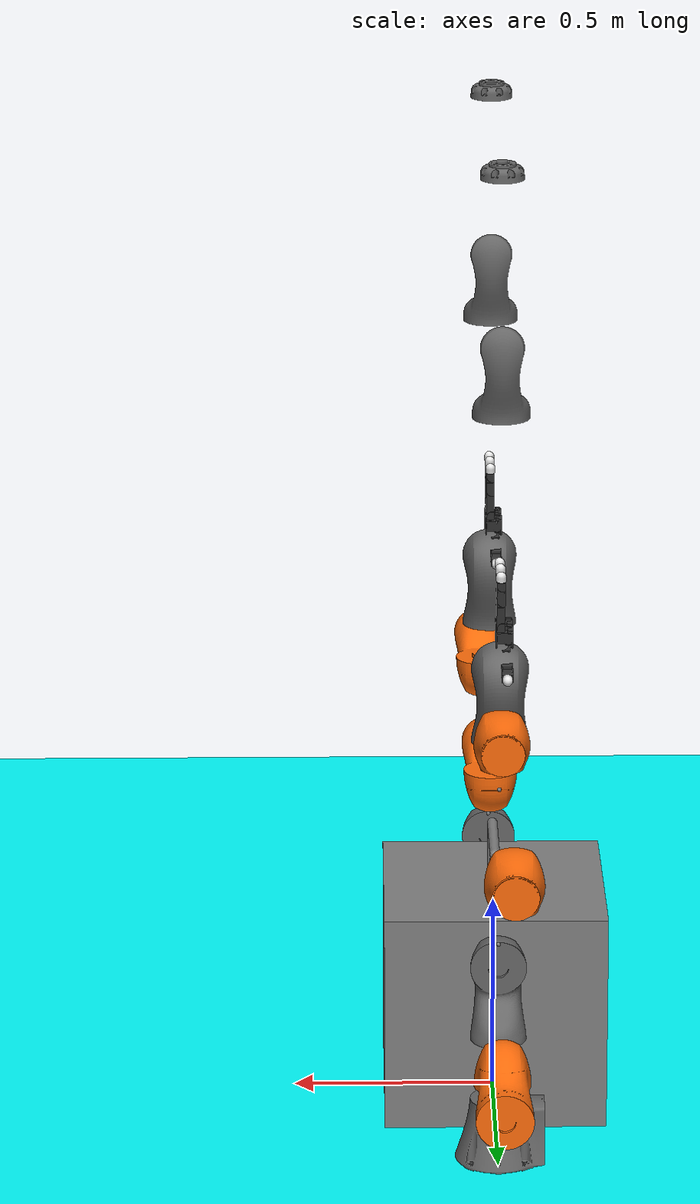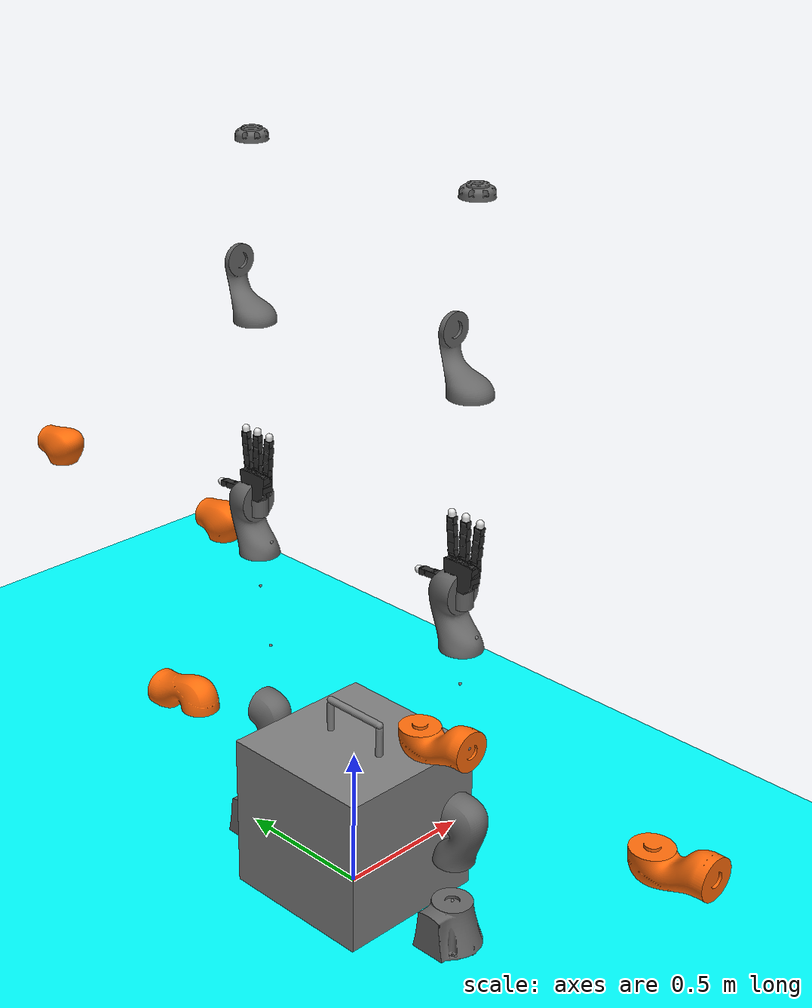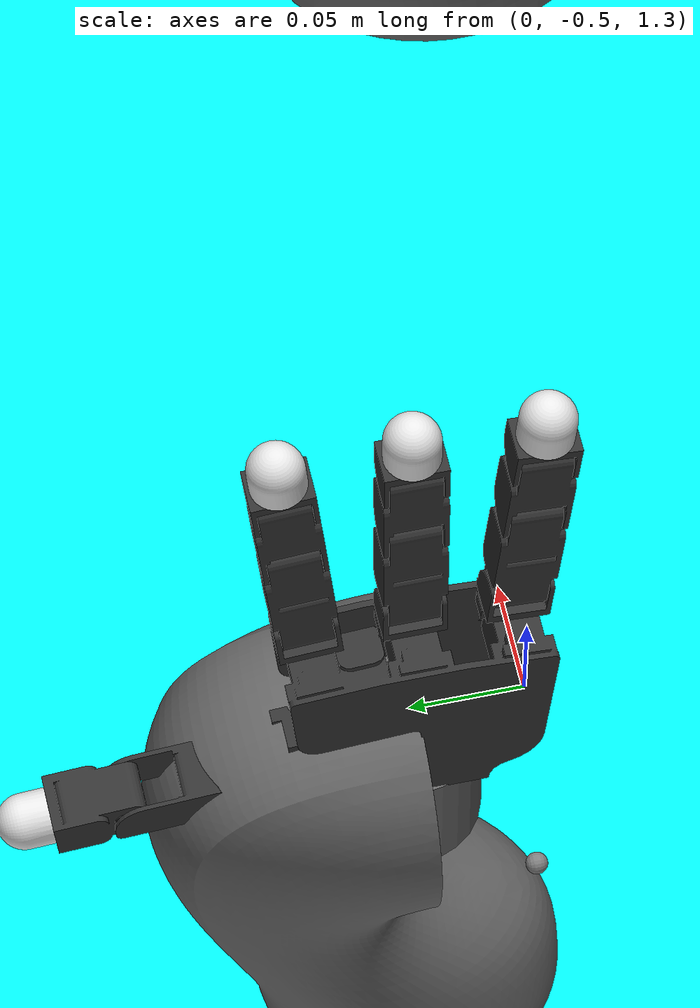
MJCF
<mujoco model="bimanual_allegro">
<!-- Copyright (c) 2023 Boston Dynamics AI Institute LLC. All rights reserved. -->

  <compiler angle="radian" meshdir="../../../meshes/" autolimits="true"/>
  <option timestep="0.01"/>

  <default>
    <default class="corner_contact">
      <geom type="sphere" size="1e-7" friction="0.5" priority="3"/>
    </default>
    <default class="allegro_right">
      <joint axis="0 1 0" damping=".1"/>
      <position kp="0.5" forcerange="-0.1 0.1"/>
      <geom density="800"/>

      <default class="allegro_right_visual">
        <geom type="mesh" contype="0" conaffinity="0" group="2" material="black"/>
        <default class="palm_visual">
          <geom mesh="base_link"/>
        </default>
        <default class="base_visual">
          <geom mesh="link_0.0"/>
        </default>
        <default class="proximal_visual">
          <geom mesh="link_1.0"/>
        </default>
        <default class="medial_visual">
          <geom mesh="link_2.0"/>
        </default>
        <default class="distal_visual">
          <geom mesh="link_3.0"/>
        </default>
        <default class="fingertip_visual">
          <geom pos="0 0 0.0267" material="white" mesh="link_3.0_tip"/>
        </default>
        <default class="thumbtip_visual">
          <geom pos="0 0 0.0423" material="white" mesh="link_15.0_tip"/>
        </default>
      </default>

      <default class="collision">
        <geom group="3" friction="0.50" type="box" mass="0"
        solimp="0.9 0.95 0.001 0.5 2" solref="0.02 1"/>
        <default class="palm_collision">
          <geom size="0.0204 0.0565 0.0475" pos="-0.0093 0 -0.0475"/>
        </default>
        <default class="base_collision">
          <geom size="0.0098 0.01375 0.0082" pos="0 0 0.0082"/>
          <default class="thumb_base_collision_0">
            <geom size="0.0179 0.017 0.011" pos="-0.0179 0.009 0.003"/>
          </default>
          <default class="thumb_base_collision_1">
            <geom size="0.0179 0.00980 0.012" pos="-0.0179 0.005 0.0255"/>
          </default>
          <default class="thumb_base_collision_2">
            <geom type="cylinder" size="0.007 0.0179" quat="1 0 1 0" pos="-0.0179 0.019 0.014"/>
          </default>
        </default>
        <default class="proximal_collision">
          <geom size="0.0098 0.01375 0.027" pos="0 0 0.027"/>
          <default class="thumb_proximal_collision">
            <geom size="0.0098 0.01375 0.00885" pos="0 0 0.00885"/>
          </default>
        </default>
        <default class="medial_collision">
          <geom size="0.0098 0.01375 0.0192" pos="0 0 0.0192"/>
          <default class="thumb_medial_collision">
            <geom size="0.0098 0.01375 0.0257" pos="0 0 0.0257"/>
          </default>
        </default>
        <default class="distal_collision">
          <geom size="0.0098 0.01375 0.008" pos="0 0 0.008"/>
          <default class="thumb_distal_collision">
            <geom size="0.0098 0.01375 0.0157" pos="0 0 0.0157"/>
          </default>
        </default>
        <default class="fingertip_collision">
          <geom type="capsule" size="0.012 0.01" pos="0 0 0.019"/>
          <default class="thumbtip_collision">
            <geom type="capsule" size="0.012 0.008" pos="0 0 0.035"/>
          </default>
        </default>
      </default>

      <default class="palm">
        <joint damping="1.0" range="-0.25 0.25"/>
        <position kp="0.5" ctrlrange="-0.25 0.25" forcerange="-1 1"/>
      </default>
      <default class="base">
        <joint axis="0 0 1" range="-0.47 0.47"/>
        <position ctrlrange="-0.47 0.47"/>
      </default>
      <default class="proximal">
        <joint range="-0.196 1.61"/>
        <position ctrlrange="-0.196 1.61"/>
      </default>
      <default class="medial">
        <joint range="-0.174 1.709"/>
        <position ctrlrange="-0.174 1.709"/>
      </default>
      <default class="distal">
        <joint range="-0.227 1.618"/>
        <position ctrlrange="-0.227 1.618"/>
      </default>
      <default class="thumb_base">
        <joint axis="-1 0 0" range="0.263 1.396"/>
        <position ctrlrange="0.263 1.396"/>
      </default>
      <default class="thumb_proximal">
        <joint axis="0 0 1" range="-0.105 1.163"/>
        <position ctrlrange="-0.105 1.163"/>
      </default>
      <default class="thumb_medial">
        <joint range="-0.189 1.644"/>
        <position ctrlrange="-0.189 1.644"/>
      </default>
      <default class="thumb_distal">
        <joint range="-0.162 1.719"/>
        <position ctrlrange="-0.162 1.719"/>
      </default>
    </default>

    <default class="iiwa">
      <!-- the margin gap parameters allow for collision detection to be triggered all the time -->
      <geom priority="2" friction="0.45 .01 .003" group="3" solref=".02 1" margin="0.0" gap="0.0"/>
      <material specular="0.5" shininess="0.25"/>
      <joint axis="0 0 1"  damping="3.0"/>
      <position kp="2.5" ctrlrange="-2.81706 2.81706" forcerange="-1000 1000" />
      <default class="joint1">
        <joint range="-2.96706 2.96706"/>
        <position ctrlrange="-2.81706 2.81706"/>
      </default>
      <default class="joint2">
        <joint range="-2.0944 2.0944"/>
        <position ctrlrange="-1.9444 1.9444"/>
      </default>
      <default class="joint3">
        <joint range="-2.0944 2.0944"/>
        <position ctrlrange="-1.9444 1.9444"/>
      </default>
      <default class="joint4">
        <joint range="-2.0944 2.0944"/>
        <position ctrlrange="-1.9444 1.9444"/>
      </default>
      <default class="joint5">
        <joint range="-3.05433 3.05433"/>
        <position ctrlrange="-2.90433 2.90433"/>
      </default>
      <default class="iiwa_visual">
        <geom type="mesh" group="2" material="gray"/>
      </default>
    </default>
  </default>

  <asset>
    <texture name="blue_grid" type="2d" builtin="checker" rgb1=".02 .14 .44" rgb2=".27 .55 1" width="300" height="300" mark="edge" markrgb="1 1 1"/>
    <material name="blue_grid" texture="blue_grid" texrepeat="1 1" texuniform="true" reflectance=".2"/>
    <material class="iiwa" name="gray" rgba="0.4 0.4 0.4 1"/>
    <material class="iiwa" name="orange" rgba="1 0.423529 0.0392157 1"/>
    <material name="black" rgba="0.2 0.2 0.2 1"/>
    <material name="white" rgba="0.9 0.9 0.9 1"/>

    <mesh name="link_0" file="iiwa7/visual/link_0.obj"/>
    <mesh name="link_1" file="iiwa7/visual/link_1.obj"/>
    <mesh name="link_2" file="iiwa7/visual/link_2.obj"/>
    <mesh name="link_3" file="iiwa7/visual/link_3.obj"/>
    <mesh name="link_4" file="iiwa7/visual/link_4.obj"/>
    <mesh name="link_5" file="iiwa7/visual/link_5.obj"/>
    <mesh name="link_6" file="iiwa7/visual/link_6.obj"/>
    <mesh name="link_7" file="iiwa7/visual/link_7.obj"/>

    <mesh name="base_link_left" file="allegro/visual/base_link_left.obj"/>
    <mesh name="base_link" file="allegro/visual/base_link.obj"/>
    <mesh name="link_0.0" file="allegro/visual/link_0.0.obj"/>
    <mesh name="link_1.0" file="allegro/visual/link_1.0.obj"/>
    <mesh name="link_2.0" file="allegro/visual/link_2.0.obj"/>
    <mesh name="link_3.0_tip" file="allegro/visual/link_3.0_tip.obj"/>
    <mesh name="link_3.0" file="allegro/visual/link_3.0.obj"/>
    <mesh name="link_4.0" file="allegro/visual/link_4.0.obj"/>
    <mesh name="link_12.0_left" file="allegro/visual/link_12.0_left.obj"/>
    <mesh name="link_12.0_right" file="allegro/visual/link_12.0_right.obj"/>
    <mesh name="link_13.0" file="allegro/visual/link_13.0.obj"/>
    <mesh name="link_14.0" file="allegro/visual/link_14.0.obj"/>
    <mesh name="link_15.0_tip" file="allegro/visual/link_15.0_tip.obj"/>
    <mesh name="link_15.0" file="allegro/visual/link_15.0.obj"/>

  </asset>

  <worldbody>
    <site name="world"/>
    <body>
      <geom mass="0" name="floor" pos="0 0 -0.10" condim="3" size="10.0 10.0 0.10" rgba="0 1 1 1" type="box" material="blue_grid"/>
    </body>

    <include file="../../components/objects/box_with_handle.xml" />

    <light name="top" pos="0 0 2" mode="trackcom"/>
    <body name="base_left" pos="0 -0.45 0" childclass="iiwa">
      <inertial mass="3.863" pos="-0.013 0 0.07" diaginertia="0.0141 0.0171 0.0178"/>
      <geom class="iiwa_visual" mesh="link_0"/>
      <body name="link1_left" gravcomp="1" pos="0 0 0.1575">
        <inertial mass="2.7025" pos="0 -0.0347 0.113" diaginertia="0.0171 0.0163 0.006"/>
        <joint name="joint1_left" class="joint1"/>
        <geom class="iiwa_visual" mesh="link_1"/>
        <site pos="0 0 -0.0005" name="site_link1_left"/>
        <body name="link2_left" gravcomp="1" pos="0 0 0.1830" quat="0 0 1 1">
          <inertial mass="2.7258" pos="0 0.0668 0.0344" diaginertia="0.0170 0.0162 0.0061" quat="0 0 1 1"/>
          <joint name="joint2_left" class="joint2"/>
          <geom class="iiwa_visual" material="orange" mesh="link_2"/>
          <site pos="0 0 -0.01" name="site_link2_left"/>
          <body name="link3_left" gravcomp="1" pos="0 0.1845 0" quat="0 0 1 1">
            <inertial mass="3.175" pos="0 0.0296 0.1265" diaginertia="0.025 0.0238 0.0076"/>
            <joint name="joint3_left" class="joint1"/>
            <geom class="iiwa_visual" mesh="link_3"/>
            <site pos="0 0 0.0355" name="site_link3_left"/>
            <body name="link4_left" gravcomp="1" pos="0 0 0.2155" quat="1 1 0 0">
              <inertial mass="2.73" pos="0 0.067 0.034" diaginertia="0.017 0.0162 0.0061" quat="1 1 0 0"/>
              <joint name="joint4_left" class="joint3"/>
              <geom class="iiwa_visual" material="orange" mesh="link_4"/>
              <site pos="0 0.01 0.046" name="site_link4_left"/>
              <body name="link5_left" gravcomp="1" pos="0 0.1845 0" quat="0 0 1 1">
                <inertial mass="1.69" pos="0.0001 0.021 0.076" diaginertia="0.01 0.0087 0.00449"/>
                <joint name="joint5_left" class="joint1"/>
                <geom class="iiwa_visual" mesh="link_5"/>
                <site pos="0 0 0.0335" name="site_link5_left"/>
                <body name="link6_left" gravcomp="1" pos="0 0 0.2155" quat="1 1 0 0">
                  <inertial mass="1.8" pos="0 0.0026 0.0005" diaginertia="0.0051 0.0047 0.0035" quat="1 1 0 0"/>
                  <joint name="joint6_left" class="joint4"/>
                  <geom class="iiwa_visual" pos="0 0 -0.0607" material="orange" mesh="link_6"/>
                  <site pos="0 0 -0.059" name="site_link6_left"/>
                  <body name="link7_left" gravcomp="1" pos="0 0.081 0" quat="0 0 1 1">
                    <inertial mass="0.4" pos="0 0 0.0294" diaginertia="0.0004 0.0004 0.0005"/>
                    <joint name="joint7_left" class="joint5"/>
                    <geom class="iiwa_visual" mesh="link_7"/>
                    <geom class="iiwa_visual" type="cylinder" material="gray" size="0.0315 0.0305" pos="0 0 0.0305"/>
                    <site pos="0 0 0.001" name="site_link7_left"/>
                    <body name="palm_left" pos="0 0 0.155" childclass="allegro_right">
                      <inertial mass="0.4154" pos="0 0 0.0475" diaginertia="1e-4 1e-4 1e-4"/>
                      <geom class="palm_visual" mesh="base_link"/>
                      <geom class="palm_collision"/>
                      <!-- First finger -->
                      <body name="ff_base_left" pos="0 0.0435 -0.001542" quat="0.999048 -0.0436194 0 0">
                        <joint name="ffj0_left" class="base"/>
                        <geom class="base_visual"/>
                        <geom class="base_collision"/>
                        <body name="ff_proximal_left" pos="0 0 0.0164">
                          <joint name="ffj1_left" class="proximal"/>
                          <geom class="proximal_visual"/>
                          <geom class="proximal_collision"/>
                          <body name="ff_medial_left" pos="0 0 0.054">
                            <joint name="ffj2_left" class="medial"/>
                            <geom class="medial_visual"/>
                            <geom class="medial_collision"/>
                            <body name="ff_distal_left" pos="0 0 0.0384">
                              <joint name="ffj3_left" class="distal"/>
                              <geom class="distal_visual"/>
                              <geom class="distal_collision"/>
                              <body name="ff_tip_left">
                                <geom class="fingertip_visual"/>
                                <geom class="fingertip_collision"/>
                                <site pos="0 0 0" name="site_ff_tip_left"/>
                              </body>
                            </body>
                          </body>
                        </body>
                      </body>
                      <!-- Middle finger -->
                      <body name="mf_base_left" pos="0 0 0.0007">
                        <joint name="mfj0_left" class="base"/>
                        <geom class="base_visual"/>
                        <geom class="base_collision"/>
                        <body name="mf_proximal_left" pos="0 0 0.0164">
                          <joint name="mfj1_left" class="proximal"/>
                          <geom class="proximal_visual"/>
                          <geom class="proximal_collision"/>
                          <body name="mf_medial_left" pos="0 0 0.054">
                            <joint name="mfj2_left" class="medial"/>
                            <geom class="medial_visual"/>
                            <geom class="medial_collision"/>
                            <body name="mf_distal_left" pos="0 0 0.0384">
                              <joint name="mfj3_left" class="distal"/>
                              <geom class="distal_visual"/>
                              <geom class="distal_collision"/>
                              <body name="mf_tip_left">
                                <geom class="fingertip_visual"/>
                                <geom class="fingertip_collision"/>
                                <site pos="0 0 0" name="site_mf_tip_left"/>
                              </body>
                            </body>
                          </body>
                        </body>
                      </body>
                      <!-- Ring finger -->
                      <body name="rf_base_left" pos="0 -0.0435 -0.001542" quat="0.999048 0.0436194 0 0">
                        <joint name="rfj0_left" class="base"/>
                        <geom class="base_visual"/>
                        <geom class="base_collision"/>
                        <body name="rf_proximal_left" pos="0 0 0.0164">
                          <joint name="rfj1_left" class="proximal"/>
                          <geom class="proximal_visual"/>
                          <geom class="proximal_collision"/>
                          <body name="rf_medial_left" pos="0 0 0.054">
                            <joint name="rfj2_left" class="medial"/>
                            <geom class="medial_visual"/>
                            <geom class="medial_collision"/>
                            <body name="rf_distal_left" pos="0 0 0.0384">
                              <joint name="rfj3_left" class="distal"/>
                              <geom class="distal_visual"/>
                              <geom class="distal_collision"/>
                              <body name="rf_tip_left">
                                <geom class="fingertip_visual"/>
                                <geom class="fingertip_collision"/>
                                <site pos="0 0 0" name="site_rf_tip_left"/>
                              </body>
                            </body>
                          </body>
                        </body>
                      </body>
                      <!-- Thumb -->
                      <body name="th_base_left" pos="-0.0182 0.019333 -0.045987" quat="0.477714 -0.521334 -0.521334 -0.477714">
                        <joint name="thj0_left" class="thumb_base"/>
                        <geom class="allegro_right_visual" mesh="link_12.0_right"/>
                        <geom class="thumb_base_collision_0"/>
                        <geom class="thumb_base_collision_1"/>
                        <geom class="thumb_base_collision_2"/>
                        <body name="th_proximal_left" pos="-0.027 0.005 0.0399">
                          <joint name="thj1_left" class="thumb_proximal"/>
                          <geom class="allegro_right_visual" mesh="link_13.0"/>
                          <geom class="thumb_proximal_collision"/>
                          <body name="th_medial_left" pos="0 0 0.0177">
                            <joint name="thj2_left" class="thumb_medial"/>
                            <geom class="allegro_right_visual" mesh="link_14.0"/>
                            <geom class="thumb_medial_collision"/>
                            <body name="th_distal_left" pos="0 0 0.0514">
                              <joint name="thj3_left" class="thumb_distal"/>
                              <geom class="allegro_right_visual" mesh="link_15.0"/>
                              <geom class="thumb_distal_collision"/>
                              <body name="th_tip_left">
                                <geom class="thumbtip_visual"/>
                                <geom class="thumbtip_collision"/>
                                <site pos="0 0 0" name="site_th_tip_left"/>
                              </body>
                            </body>
                          </body>
                        </body>
                      </body>
                    </body>
                  </body>
                </body>
              </body>
            </body>
          </body>
        </body>
      </body>
    </body>

    <body name="base_right" pos="0 0.45 0" childclass="iiwa">
      <inertial mass="3.863" pos="-0.013 0 0.07" diaginertia="0.0141 0.0171 0.0178"/>
      <geom class="iiwa_visual" mesh="link_0"/>
      <body name="link1_right" gravcomp="1" pos="0 0 0.1575">
        <inertial mass="2.7025" pos="0 -0.0347 0.113" diaginertia="0.0171 0.0163 0.006"/>
        <joint name="joint1_right" class="joint1"/>
        <geom class="iiwa_visual" mesh="link_1"/>
        <site pos="0 0 -0.0005" name="site_link1_right"/>
        <body name="link2_right" gravcomp="1" pos="0 0 0.1830" quat="0 0 1 1">
          <inertial mass="2.7258" pos="0 0.0668 0.0344" diaginertia="0.0170 0.0162 0.0061" quat="0 0 1 1"/>
          <joint name="joint2_right" class="joint2"/>
          <geom class="iiwa_visual" material="orange" mesh="link_2"/>
          <site pos="0 0 -0.01" name="site_link2_right"/>
          <body name="link3_right" gravcomp="1" pos="0 0.1845 0" quat="0 0 1 1">
            <inertial mass="3.175" pos="0 0.0296 0.1265" diaginertia="0.025 0.0238 0.0076"/>
            <joint name="joint3_right" class="joint1"/>
            <geom class="iiwa_visual" mesh="link_3"/>
            <site pos="0 0 0.0355" name="site_link3_right"/>
            <body name="link4_right" gravcomp="1" pos="0 0 0.2155" quat="1 1 0 0">
              <inertial mass="2.73" pos="0 0.067 0.034" diaginertia="0.017 0.0162 0.0061" quat="1 1 0 0"/>
              <joint name="joint4_right" class="joint3"/>
              <geom class="iiwa_visual" material="orange" mesh="link_4"/>
              <site pos="0 0.01 0.046" name="site_link4_right"/>
              <body name="link5_right" gravcomp="1" pos="0 0.1845 0" quat="0 0 1 1">
                <inertial mass="1.69" pos="0.0001 0.021 0.076" diaginertia="0.01 0.0087 0.00449"/>
                <joint name="joint5_right" class="joint1"/>
                <geom class="iiwa_visual" mesh="link_5"/>
                <site pos="0 0 0.0335" name="site_link5_right"/>
                <body name="link6_right" gravcomp="1" pos="0 0 0.2155" quat="1 1 0 0">
                  <inertial mass="1.8" pos="0 0.0026 0.0005" diaginertia="0.0051 0.0047 0.0035" quat="1 1 0 0"/>
                  <joint name="joint6_right" class="joint4"/>
                  <geom class="iiwa_visual" pos="0 0 -0.0607" material="orange" mesh="link_6"/>
                  <site pos="0 0 -0.059" name="site_link6_right"/>
                  <body name="link7_right" gravcomp="1" pos="0 0.081 0" quat="0 0 1 1">
                    <inertial mass="0.4" pos="0 0 0.0294" diaginertia="0.0004 0.0004 0.0005"/>
                    <joint name="joint7_right" class="joint5"/>
                    <geom class="iiwa_visual" mesh="link_7"/>
                    <geom class="iiwa_visual" type="cylinder" material="gray" size="0.0315 0.0305" pos="0 0 0.0305"/>
                    <site pos="0 0 0.001" name="site_link7_right"/>
                    <body name="palm_right" pos="0 0 0.155" childclass="allegro_right">
                      <inertial mass="0.4154" pos="0 0 0.0475" diaginertia="1e-4 1e-4 1e-4"/>
                      <geom class="palm_visual" mesh="base_link"/>
                      <geom class="palm_collision"/>
                      <!-- First finger -->
                      <body name="ff_base_right" pos="0 0.0435 -0.001542" quat="0.999048 -0.0436194 0 0">
                        <joint name="ffj0_right" class="base"/>
                        <geom class="base_visual"/>
                        <geom class="base_collision"/>
                        <body name="ff_proximal_right" pos="0 0 0.0164">
                          <joint name="ffj1_right" class="proximal"/>
                          <geom class="proximal_visual"/>
                          <geom class="proximal_collision"/>
                          <body name="ff_medial_right" pos="0 0 0.054">
                            <joint name="ffj2_right" class="medial"/>
                            <geom class="medial_visual"/>
                            <geom class="medial_collision"/>
                            <body name="ff_distal_right" pos="0 0 0.0384">
                              <joint name="ffj3_right" class="distal"/>
                              <geom class="distal_visual"/>
                              <geom class="distal_collision"/>
                              <body name="ff_tip_right">
                                <geom class="fingertip_visual"/>
                                <geom class="fingertip_collision"/>
                                <site pos="0 0 0" name="site_ff_tip_right"/>
                              </body>
                            </body>
                          </body>
                        </body>
                      </body>
                      <!-- Middle finger -->
                      <body name="mf_base_right" pos="0 0 0.0007">
                        <joint name="mfj0_right" class="base"/>
                        <geom class="base_visual"/>
                        <geom class="base_collision"/>
                        <body name="mf_proximal_right" pos="0 0 0.0164">
                          <joint name="mfj1_right" class="proximal"/>
                          <geom class="proximal_visual"/>
                          <geom class="proximal_collision"/>
                          <body name="mf_medial_right" pos="0 0 0.054">
                            <joint name="mfj2_right" class="medial"/>
                            <geom class="medial_visual"/>
                            <geom class="medial_collision"/>
                            <body name="mf_distal_right" pos="0 0 0.0384">
                              <joint name="mfj3_right" class="distal"/>
                              <geom class="distal_visual"/>
                              <geom class="distal_collision"/>
                              <body name="mf_tip_right">
                                <geom class="fingertip_visual"/>
                                <geom class="fingertip_collision"/>
                                <site pos="0 0 0" name="site_mf_tip_right"/>
                              </body>
                            </body>
                          </body>
                        </body>
                      </body>
                      <!-- Ring finger -->
                      <body name="rf_base_right" pos="0 -0.0435 -0.001542" quat="0.999048 0.0436194 0 0">
                        <joint name="rfj0_right" class="base"/>
                        <geom class="base_visual"/>
                        <geom class="base_collision"/>
                        <body name="rf_proximal_right" pos="0 0 0.0164">
                          <joint name="rfj1_right" class="proximal"/>
                          <geom class="proximal_visual"/>
                          <geom class="proximal_collision"/>
                          <body name="rf_medial_right" pos="0 0 0.054">
                            <joint name="rfj2_right" class="medial"/>
                            <geom class="medial_visual"/>
                            <geom class="medial_collision"/>
                            <body name="rf_distal_right" pos="0 0 0.0384">
                              <joint name="rfj3_right" class="distal"/>
                              <geom class="distal_visual"/>
                              <geom class="distal_collision"/>
                              <body name="rf_tip_right">
                                <geom class="fingertip_visual"/>
                                <geom class="fingertip_collision"/>
                                <site pos="0 0 0" name="site_rf_tip_right"/>
                              </body>
                            </body>
                          </body>
                        </body>
                      </body>
                      <!-- Thumb -->
                      <body name="th_base_right" pos="-0.0182 0.019333 -0.045987" quat="0.477714 -0.521334 -0.521334 -0.477714">
                        <joint name="thj0_right" class="thumb_base"/>
                        <geom class="allegro_right_visual" mesh="link_12.0_right"/>
                        <geom class="thumb_base_collision_0"/>
                        <geom class="thumb_base_collision_1"/>
                        <geom class="thumb_base_collision_2"/>
                        <body name="th_proximal_right" pos="-0.027 0.005 0.0399">
                          <joint name="thj1_right" class="thumb_proximal"/>
                          <geom class="allegro_right_visual" mesh="link_13.0"/>
                          <geom class="thumb_proximal_collision"/>
                          <body name="th_medial_right" pos="0 0 0.0177">
                            <joint name="thj2_right" class="thumb_medial"/>
                            <geom class="allegro_right_visual" mesh="link_14.0"/>
                            <geom class="thumb_medial_collision"/>
                            <body name="th_distal_right" pos="0 0 0.0514">
                              <joint name="thj3_right" class="thumb_distal"/>
                              <geom class="allegro_right_visual" mesh="link_15.0"/>
                              <geom class="thumb_distal_collision"/>
                              <body name="th_tip_right">
                                <geom class="thumbtip_visual"/>
                                <geom class="thumbtip_collision"/>
                                <site pos="0 0 0" name="site_th_tip_right"/>
                              </body>
                            </body>
                          </body>
                        </body>
                      </body>
                    </body>
                  </body>
                </body>
              </body>
            </body>
          </body>
        </body>
      </body>
    </body>
  </worldbody>

  <contact>
    <exclude body1="base_left" body2="link1_left"/>
    <exclude body1="base_right" body2="link1_right"/>
    <exclude body1="palm_left" body2="ff_base_left"/>
    <exclude body1="palm_left" body2="mf_base_left"/>
    <exclude body1="palm_left" body2="rf_base_left"/>
    <exclude body1="palm_left" body2="th_base_left"/>
    <exclude body1="palm_left" body2="th_proximal_left"/>
    <exclude body1="palm_right" body2="ff_base_right"/>
    <exclude body1="palm_right" body2="mf_base_right"/>
    <exclude body1="palm_right" body2="rf_base_right"/>
    <exclude body1="palm_right" body2="th_base_right"/>
    <exclude body1="palm_right" body2="th_proximal_right"/>
  </contact>

  <keyframe>
    <!-- mujoco q = [object_pos, object_quat, arm_pos_left, arm_pos_right, hand_pos_left, hand_pos_right] -->
    <key name="home" qpos="0 0 0.30   1 0 0 0   0 0 0 0 0 0 0  0 0 0 0 0 0 0  0 0 0 0 0 0 0 0 0 0 0 0 0 0 0 0  0 0 0 0 0 0 0 0 0 0 0 0 0 0 0 0" />
  </keyframe>

  <sensor>
    <framepos name="sensor_link1_left" objtype="site" objname="site_link1_left" reftype="site" refname="site_object" />
    <framepos name="sensor_link2_left" objtype="site" objname="site_link2_left" reftype="site" refname="site_object" />
    <framepos name="sensor_link3_left" objtype="site" objname="site_link3_left" reftype="site" refname="site_object" />
    <framepos name="sensor_link4_left" objtype="site" objname="site_link4_left" reftype="site" refname="site_object" />
    <framepos name="sensor_link5_left" objtype="site" objname="site_link5_left" reftype="site" refname="site_object" />
    <framepos name="sensor_link6_left" objtype="site" objname="site_link6_left" reftype="site" refname="site_object" />
    <framepos name="sensor_link7_left" objtype="site" objname="site_link7_left" reftype="site" refname="site_object" />
    <framepos name="sensor_link1_right" objtype="site" objname="site_link1_right" reftype="site" refname="site_object" />
    <framepos name="sensor_link2_right" objtype="site" objname="site_link2_right" reftype="site" refname="site_object" />
    <framepos name="sensor_link3_right" objtype="site" objname="site_link3_right" reftype="site" refname="site_object" />
    <framepos name="sensor_link4_right" objtype="site" objname="site_link4_right" reftype="site" refname="site_object" />
    <framepos name="sensor_link5_right" objtype="site" objname="site_link5_right" reftype="site" refname="site_object" />
    <framepos name="sensor_link6_right" objtype="site" objname="site_link6_right" reftype="site" refname="site_object" />
    <framepos name="sensor_link7_right" objtype="site" objname="site_link7_right" reftype="site" refname="site_object" />
    <framepos name="sensor_ff_tip_left" objtype="site" objname="site_ff_tip_left" reftype="site" refname="site_object"/>
    <framepos name="sensor_mf_tip_left" objtype="site" objname="site_mf_tip_left" reftype="site" refname="site_object"/>
    <framepos name="sensor_rf_tip_left" objtype="site" objname="site_rf_tip_left" reftype="site" refname="site_object"/>
    <framepos name="sensor_th_tip_left" objtype="site" objname="site_th_tip_left" reftype="site" refname="site_object"/>
    <framepos name="sensor_ff_tip_right" objtype="site" objname="site_ff_tip_right" reftype="site" refname="site_object"/>
    <framepos name="sensor_mf_tip_right" objtype="site" objname="site_mf_tip_right" reftype="site" refname="site_object"/>
    <framepos name="sensor_rf_tip_right" objtype="site" objname="site_rf_tip_right" reftype="site" refname="site_object"/>
    <framepos name="sensor_th_tip_right" objtype="site" objname="site_th_tip_right" reftype="site" refname="site_object"/>
  </sensor>

  <actuator>
    <general name="actuator1_left" joint="joint1_left" class="joint1"/>
    <general name="actuator2_left" joint="joint2_left" class="joint2"/>
    <general name="actuator3_left" joint="joint3_left" class="joint1"/>
    <general name="actuator4_left" joint="joint4_left" class="joint3"/>
    <general name="actuator5_left" joint="joint5_left" class="joint1"/>
    <general name="actuator6_left" joint="joint6_left" class="joint4"/>
    <general name="actuator7_left" joint="joint7_left" class="joint5"/>
    <general name="actuator1_right" joint="joint1_right" class="joint1"/>
    <general name="actuator2_right" joint="joint2_right" class="joint2"/>
    <general name="actuator3_right" joint="joint3_right" class="joint1"/>
    <general name="actuator4_right" joint="joint4_right" class="joint3"/>
    <general name="actuator5_right" joint="joint5_right" class="joint1"/>
    <general name="actuator6_right" joint="joint6_right" class="joint4"/>
    <general name="actuator7_right" joint="joint7_right" class="joint5"/>
    <position name="ffa0_left" joint="ffj0_left" class="base"/>
    <position name="ffa1_left" joint="ffj1_left" class="proximal"/>
    <position name="ffa2_left" joint="ffj2_left" class="medial"/>
    <position name="ffa3_left" joint="ffj3_left" class="distal"/>
    <position name="mfa0_left" joint="mfj0_left" class="base"/>
    <position name="mfa1_left" joint="mfj1_left" class="proximal"/>
    <position name="mfa2_left" joint="mfj2_left" class="medial"/>
    <position name="mfa3_left" joint="mfj3_left" class="distal"/>
    <position name="rfa0_left" joint="rfj0_left" class="base"/>
    <position name="rfa1_left" joint="rfj1_left" class="proximal"/>
    <position name="rfa2_left" joint="rfj2_left" class="medial"/>
    <position name="rfa3_left" joint="rfj3_left" class="distal"/>
    <position name="tha0_left" joint="thj0_left" class="thumb_base"/>
    <position name="tha1_left" joint="thj1_left" class="thumb_proximal"/>
    <position name="tha2_left" joint="thj2_left" class="thumb_medial"/>
    <position name="tha3_left" joint="thj3_left" class="thumb_distal"/>
    <position name="ffa0_right" joint="ffj0_right" class="base"/>
    <position name="ffa1_right" joint="ffj1_right" class="proximal"/>
    <position name="ffa2_right" joint="ffj2_right" class="medial"/>
    <position name="ffa3_right" joint="ffj3_right" class="distal"/>
    <position name="mfa0_right" joint="mfj0_right" class="base"/>
    <position name="mfa1_right" joint="mfj1_right" class="proximal"/>
    <position name="mfa2_right" joint="mfj2_right" class="medial"/>
    <position name="mfa3_right" joint="mfj3_right" class="distal"/>
    <position name="rfa0_right" joint="rfj0_right" class="base"/>
    <position name="rfa1_right" joint="rfj1_right" class="proximal"/>
    <position name="rfa2_right" joint="rfj2_right" class="medial"/>
    <position name="rfa3_right" joint="rfj3_right" class="distal"/>
    <position name="tha0_right" joint="thj0_right" class="thumb_base"/>
    <position name="tha1_right" joint="thj1_right" class="thumb_proximal"/>
    <position name="tha2_right" joint="thj2_right" class="thumb_medial"/>
    <position name="tha3_right" joint="thj3_right" class="thumb_distal"/>
  </actuator>

</mujoco>

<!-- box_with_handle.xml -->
<mujoco model="box_with_handle">
<!-- Copyright (c) 2023 Boston Dynamics AI Institute LLC. All rights reserved. -->
  <body name="box_with_handle" pos="0 0 0.275">
    <joint name="box_with_handle_joint" type="free"/>
    <inertial pos="0 0 0" mass="1.72" diaginertia="0.01 0.01 0.01"/>

    <geom name="box" type="box" size="0.275 0.275 0.275" priority="3"/>
    <geom name="handle_left" type="capsule" size="0.0125 0.05" pos="0 0.1125 0.325" priority="3"/>
    <geom name="handle_right" type="capsule" size="0.0125 0.05" pos="0 -0.1125 0.325" priority="3"/>
    <geom name="handle_top" type="capsule" size="0.0125 0.1125" pos="0 0 0.3875" euler="1.57 0 0" priority="3"/>

    <site name="site_object" pos="0 0 -0.3" size="0.01"/>
  </body>
</mujoco>
